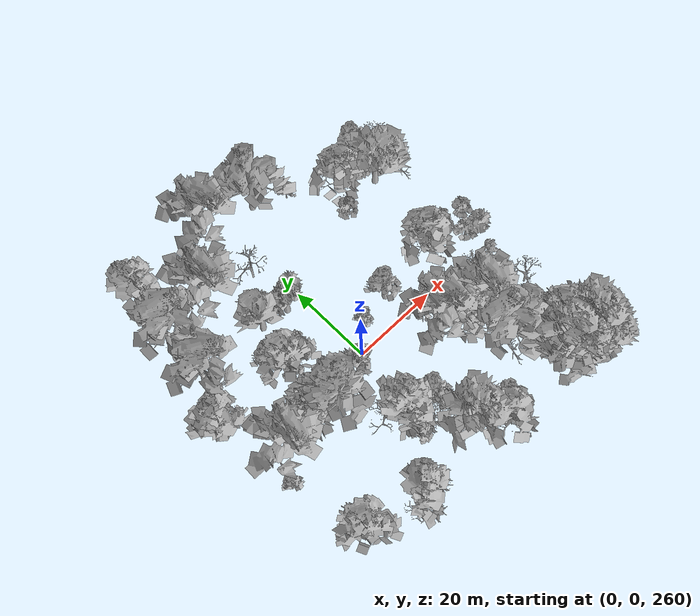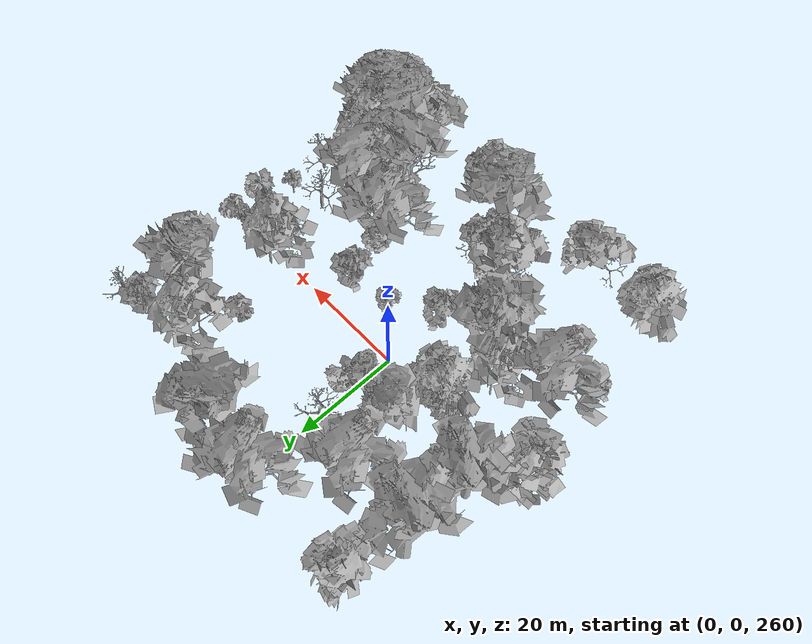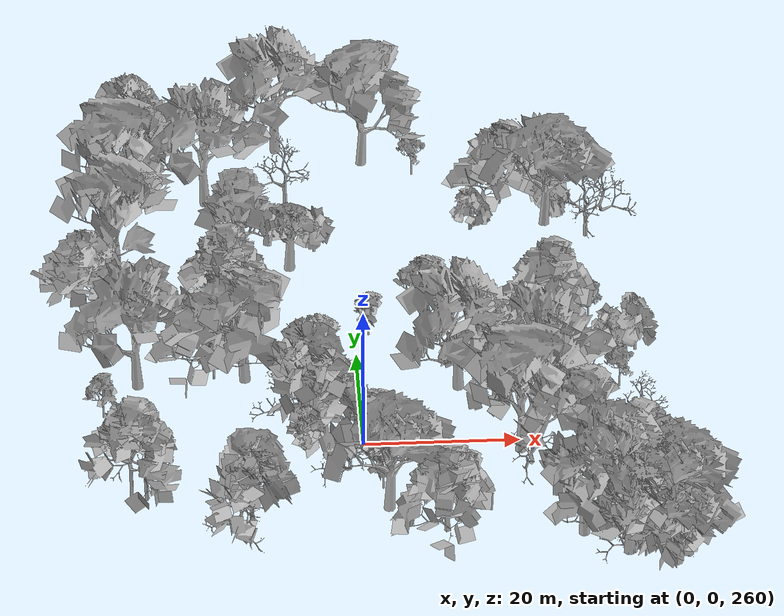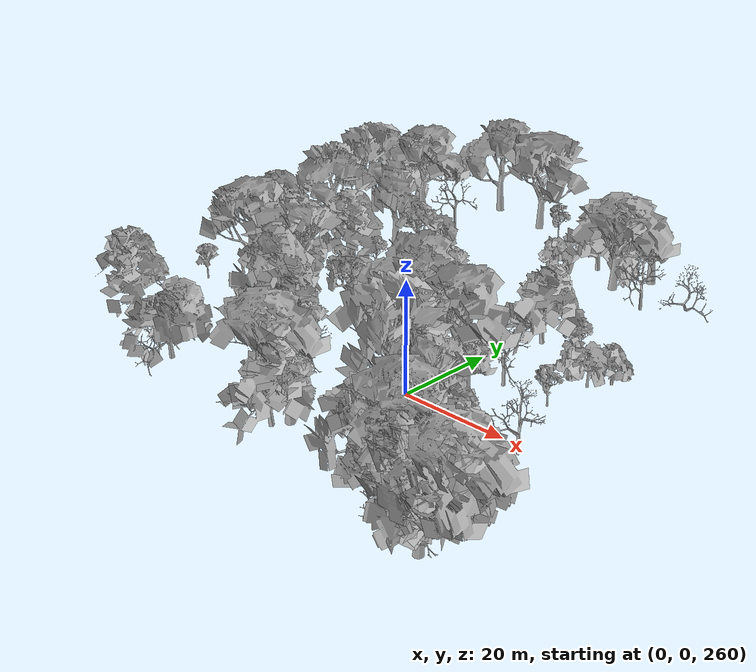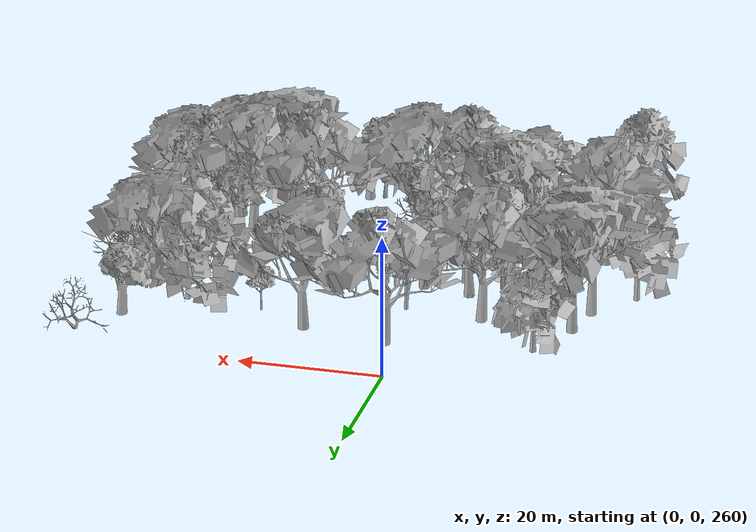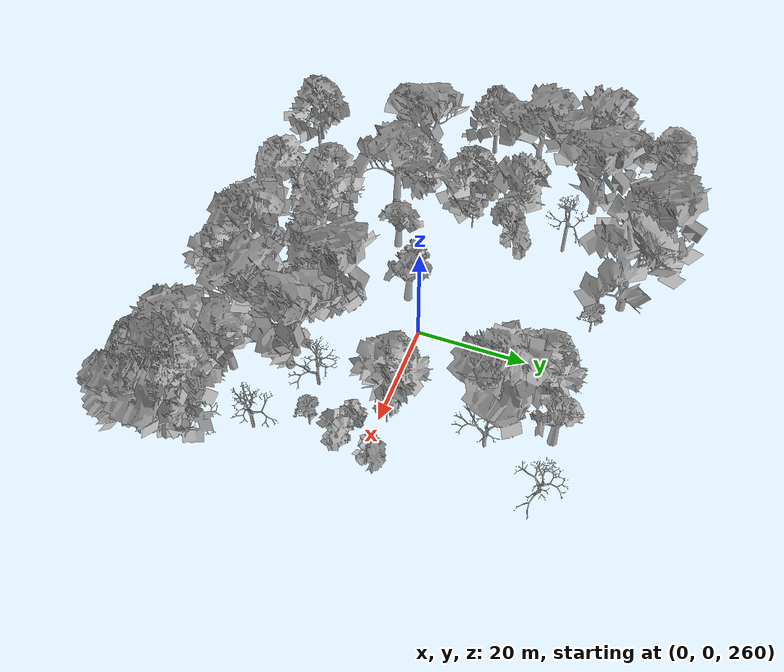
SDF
<sdf version="1.6">
 <world name="default">
  <light name="sun" type="directional">
   <pose>0 0 10 0 -0 0</pose>
   <diffuse>0.8 0.8 0.8 1</diffuse>
   <specular>0.2 0.2 0.2 1</specular>
   <attenuation>
    <range>1000</range>
    <constant>0.9</constant>
    <linear>0.01</linear>
    <quadratic>0.001</quadratic>
   </attenuation>
   <direction>-0.5 0.1 -0.9</direction>
  </light>
  <scene>
   <sky><clouds><speed>12</speed></clouds></sky>
   <ambient>0.4 0.4 0.4 1</ambient>
   <background>0.7 0.7 0.7 1</background>
   <shadows>1</shadows>
  </scene>
  <spherical_coordinates>
   <surface_model>EARTH_WGS84</surface_model>
   <latitude_deg>47.3977</latitude_deg>
   <longitude_deg>8.54559</longitude_deg>
   <elevation>0</elevation>
   <heading_deg>0</heading_deg>
  </spherical_coordinates>
  <physics name="default_physics" default="0" type="ode">
   <ode>
    <solver>
     <type>quick</type>
     <iters>100</iters>
     <sor>1.3</sor>
     <use_dynamic_moi_rescaling>0</use_dynamic_moi_rescaling>
    </solver>
    <constraints>
     <cfm>0</cfm>
     <erp>0.2</erp>
     <contact_max_correcting_vel>100</contact_max_correcting_vel>
     <contact_surface_layer>0.001</contact_surface_layer>
    </constraints>
   </ode>
   <max_step_size>0.002</max_step_size>
   <real_time_factor>1</real_time_factor>
   <real_time_update_rate>500</real_time_update_rate>
  </physics>
  <gravity>0 0 -9.8</gravity>
  <magnetic_field>6e-06 2.3e-05 -4.2e-05</magnetic_field>
  <atmosphere type="adiabatic"/>
  <model name="my_mesh0">
   <pose>31.8092 -32.3227 269.201 0 -0 0.686781</pose>
   <static>1</static>
   <link name="body">
    <visual name="visual">
     <geometry><mesh><uri>model://trees/13.dae</uri><scale>1 1 1</scale></mesh></geometry>
    </visual>
    <collision name="collision">
     <geometry><mesh><uri>model://trees/13.dae</uri><scale>1 1 1</scale></mesh></geometry>
    </collision>
   </link>
  </model>
  <model name="my_mesh1">
   <pose>34.7272 -24.6179 268.006 0 0 -0.632447</pose>
   <static>1</static>
   <link name="body">
    <visual name="visual">
     <geometry><mesh><uri>model://trees/19.dae</uri><scale>1 1 1</scale></mesh></geometry>
    </visual>
    <collision name="collision">
     <geometry><mesh><uri>model://trees/19.dae</uri><scale>1 1 1</scale></mesh></geometry>
    </collision>
   </link>
  </model>
  <model name="my_mesh2">
   <pose>32.0253 -30.8515 269.517 0 -0 0.346723</pose>
   <static>1</static>
   <link name="body">
    <visual name="visual">
     <geometry><mesh><uri>model://trees/7.dae</uri><scale>1 1 1</scale></mesh></geometry>
    </visual>
    <collision name="collision">
     <geometry><mesh><uri>model://trees/7.dae</uri><scale>1 1 1</scale></mesh></geometry>
    </collision>
   </link>
  </model>
  <model name="my_mesh3">
   <pose>30.3491 -32.8773 269.58 0 0 -0.473909</pose>
   <static>1</static>
   <link name="body">
    <visual name="visual">
     <geometry><mesh><uri>model://trees/1.dae</uri><scale>1 1 1</scale></mesh></geometry>
    </visual>
    <collision name="collision">
     <geometry><mesh><uri>model://trees/1.dae</uri><scale>1 1 1</scale></mesh></geometry>
    </collision>
   </link>
  </model>
  <model name="my_mesh4">
   <pose>30.1256 -35.2091 268.508 0 0 -0.863591</pose>
   <static>1</static>
   <link name="body">
    <visual name="visual">
     <geometry><mesh><uri>model://trees/11.dae</uri><scale>1 1 1</scale></mesh></geometry>
    </visual>
    <collision name="collision">
     <geometry><mesh><uri>model://trees/11.dae</uri><scale>1 1 1</scale></mesh></geometry>
    </collision>
   </link>
  </model>
  <model name="my_mesh5">
   <pose>34.7257 -35.412 267.371 0 -0 0.107267</pose>
   <static>1</static>
   <link name="body">
    <visual name="visual">
     <geometry><mesh><uri>model://trees/3.dae</uri><scale>1 1 1</scale></mesh></geometry>
    </visual>
    <collision name="collision">
     <geometry><mesh><uri>model://trees/3.dae</uri><scale>1 1 1</scale></mesh></geometry>
    </collision>
   </link>
  </model>
  <model name="my_mesh6">
   <pose>34.9846 -27.5556 268.133 0 0 -0.910287</pose>
   <static>1</static>
   <link name="body">
    <visual name="visual">
     <geometry><mesh><uri>model://trees/12.dae</uri><scale>1 1 1</scale></mesh></geometry>
    </visual>
    <collision name="collision">
     <geometry><mesh><uri>model://trees/12.dae</uri><scale>1 1 1</scale></mesh></geometry>
    </collision>
   </link>
  </model>
  <model name="my_mesh7">
   <pose>34.6481 -32.1142 267.915 0 0 -1.41705</pose>
   <static>1</static>
   <link name="body">
    <visual name="visual">
     <geometry><mesh><uri>model://trees/19.dae</uri><scale>1 1 1</scale></mesh></geometry>
    </visual>
    <collision name="collision">
     <geometry><mesh><uri>model://trees/19.dae</uri><scale>1 1 1</scale></mesh></geometry>
    </collision>
   </link>
  </model>
  <model name="my_mesh8">
   <pose>35.044 -28.1836 268.127 0 -0 0.463468</pose>
   <static>1</static>
   <link name="body">
    <visual name="visual">
     <geometry><mesh><uri>model://trees/0.dae</uri><scale>1 1 1</scale></mesh></geometry>
    </visual>
    <collision name="collision">
     <geometry><mesh><uri>model://trees/0.dae</uri><scale>1 1 1</scale></mesh></geometry>
    </collision>
   </link>
  </model>
  <model name="my_mesh9">
   <pose>35.2249 -30.7743 267.98 0 0 -1.43985</pose>
   <static>1</static>
   <link name="body">
    <visual name="visual">
     <geometry><mesh><uri>model://trees/6.dae</uri><scale>1 1 1</scale></mesh></geometry>
    </visual>
    <collision name="collision">
     <geometry><mesh><uri>model://trees/6.dae</uri><scale>1 1 1</scale></mesh></geometry>
    </collision>
   </link>
  </model>
  <model name="my_mesh10">
   <pose>32.33 -33.5168 268.46 0 -0 0.749247</pose>
   <static>1</static>
   <link name="body">
    <visual name="visual">
     <geometry><mesh><uri>model://trees/13.dae</uri><scale>1 1 1</scale></mesh></geometry>
    </visual>
    <collision name="collision">
     <geometry><mesh><uri>model://trees/13.dae</uri><scale>1 1 1</scale></mesh></geometry>
    </collision>
   </link>
  </model>
  <model name="my_mesh11">
   <pose>34.3327 -31.6171 267.68 0 -0 0.21674</pose>
   <static>1</static>
   <link name="body">
    <visual name="visual">
     <geometry><mesh><uri>model://trees/15.dae</uri><scale>1 1 1</scale></mesh></geometry>
    </visual>
    <collision name="collision">
     <geometry><mesh><uri>model://trees/15.dae</uri><scale>1 1 1</scale></mesh></geometry>
    </collision>
   </link>
  </model>
  <model name="my_mesh12">
   <pose>25.7476 -22.197 271.613 0 -0 0.57092</pose>
   <static>1</static>
   <link name="body">
    <visual name="visual">
     <geometry><mesh><uri>model://trees/11.dae</uri><scale>1 1 1</scale></mesh></geometry>
    </visual>
    <collision name="collision">
     <geometry><mesh><uri>model://trees/11.dae</uri><scale>1 1 1</scale></mesh></geometry>
    </collision>
   </link>
  </model>
  <model name="my_mesh13">
   <pose>31.4644 -34.9695 268.605 0 -0 0.342283</pose>
   <static>1</static>
   <link name="body">
    <visual name="visual">
     <geometry><mesh><uri>model://trees/3.dae</uri><scale>1 1 1</scale></mesh></geometry>
    </visual>
    <collision name="collision">
     <geometry><mesh><uri>model://trees/3.dae</uri><scale>1 1 1</scale></mesh></geometry>
    </collision>
   </link>
  </model>
  <model name="my_mesh14">
   <pose>32.3999 -28.7467 268.439 0 -0 0.516903</pose>
   <static>1</static>
   <link name="body">
    <visual name="visual">
     <geometry><mesh><uri>model://trees/17.dae</uri><scale>1 1 1</scale></mesh></geometry>
    </visual>
    <collision name="collision">
     <geometry><mesh><uri>model://trees/17.dae</uri><scale>1 1 1</scale></mesh></geometry>
    </collision>
   </link>
  </model>
  <model name="my_mesh15">
   <pose>24.846 -33.4178 270.201 0 -0 0.440327</pose>
   <static>1</static>
   <link name="body">
    <visual name="visual">
     <geometry><mesh><uri>model://trees/8.dae</uri><scale>1 1 1</scale></mesh></geometry>
    </visual>
    <collision name="collision">
     <geometry><mesh><uri>model://trees/8.dae</uri><scale>1 1 1</scale></mesh></geometry>
    </collision>
   </link>
  </model>
  <model name="my_mesh16">
   <pose>30.8607 -35.1136 268.38 0 0 -1.54265</pose>
   <static>1</static>
   <link name="body">
    <visual name="visual">
     <geometry><mesh><uri>model://trees/18.dae</uri><scale>1 1 1</scale></mesh></geometry>
    </visual>
    <collision name="collision">
     <geometry><mesh><uri>model://trees/18.dae</uri><scale>1 1 1</scale></mesh></geometry>
    </collision>
   </link>
  </model>
  <model name="my_mesh17">
   <pose>34.3845 -34.5527 267.435 0 0 -1.02573</pose>
   <static>1</static>
   <link name="body">
    <visual name="visual">
     <geometry><mesh><uri>model://trees/12.dae</uri><scale>1 1 1</scale></mesh></geometry>
    </visual>
    <collision name="collision">
     <geometry><mesh><uri>model://trees/12.dae</uri><scale>1 1 1</scale></mesh></geometry>
    </collision>
   </link>
  </model>
  <model name="my_mesh18">
   <pose>35.5261 -31.3053 267.911 0 0 -1.09133</pose>
   <static>1</static>
   <link name="body">
    <visual name="visual">
     <geometry><mesh><uri>model://trees/9.dae</uri><scale>1 1 1</scale></mesh></geometry>
    </visual>
    <collision name="collision">
     <geometry><mesh><uri>model://trees/9.dae</uri><scale>1 1 1</scale></mesh></geometry>
    </collision>
   </link>
  </model>
  <model name="my_mesh19">
   <pose>34.5955 -31.3232 267.979 0 -0 0.092958</pose>
   <static>1</static>
   <link name="body">
    <visual name="visual">
     <geometry><mesh><uri>model://trees/14.dae</uri><scale>1 1 1</scale></mesh></geometry>
    </visual>
    <collision name="collision">
     <geometry><mesh><uri>model://trees/14.dae</uri><scale>1 1 1</scale></mesh></geometry>
    </collision>
   </link>
  </model>
  <model name="my_mesh20">
   <pose>27.2932 -30.1042 270.733 0 0 -0.576704</pose>
   <static>1</static>
   <link name="body">
    <visual name="visual">
     <geometry><mesh><uri>model://trees/9.dae</uri><scale>1 1 1</scale></mesh></geometry>
    </visual>
    <collision name="collision">
     <geometry><mesh><uri>model://trees/9.dae</uri><scale>1 1 1</scale></mesh></geometry>
    </collision>
   </link>
  </model>
  <model name="my_mesh21">
   <pose>35.9068 -35.5767 267.076 0 0 -1.48626</pose>
   <static>1</static>
   <link name="body">
    <visual name="visual">
     <geometry><mesh><uri>model://trees/8.dae</uri><scale>1 1 1</scale></mesh></geometry>
    </visual>
    <collision name="collision">
     <geometry><mesh><uri>model://trees/8.dae</uri><scale>1 1 1</scale></mesh></geometry>
    </collision>
   </link>
  </model>
  <model name="my_mesh22">
   <pose>32.0585 -35.6565 268.252 0 -0 1.45529</pose>
   <static>1</static>
   <link name="body">
    <visual name="visual">
     <geometry><mesh><uri>model://trees/2.dae</uri><scale>1 1 1</scale></mesh></geometry>
    </visual>
    <collision name="collision">
     <geometry><mesh><uri>model://trees/2.dae</uri><scale>1 1 1</scale></mesh></geometry>
    </collision>
   </link>
  </model>
  <model name="my_mesh23">
   <pose>35.9787 -24.9718 268.479 0 -0 0.571739</pose>
   <static>1</static>
   <link name="body">
    <visual name="visual">
     <geometry><mesh><uri>model://trees/19.dae</uri><scale>1 1 1</scale></mesh></geometry>
    </visual>
    <collision name="collision">
     <geometry><mesh><uri>model://trees/19.dae</uri><scale>1 1 1</scale></mesh></geometry>
    </collision>
   </link>
  </model>
  <model name="my_mesh24">
   <pose>34.767 -24.7098 268.006 0 0 -1.23066</pose>
   <static>1</static>
   <link name="body">
    <visual name="visual">
     <geometry><mesh><uri>model://trees/3.dae</uri><scale>1 1 1</scale></mesh></geometry>
    </visual>
    <collision name="collision">
     <geometry><mesh><uri>model://trees/3.dae</uri><scale>1 1 1</scale></mesh></geometry>
    </collision>
   </link>
  </model>
  <model name="my_mesh25">
   <pose>34.4909 -27.7353 268.133 0 0 -1.35264</pose>
   <static>1</static>
   <link name="body">
    <visual name="visual">
     <geometry><mesh><uri>model://trees/15.dae</uri><scale>1 1 1</scale></mesh></geometry>
    </visual>
    <collision name="collision">
     <geometry><mesh><uri>model://trees/15.dae</uri><scale>1 1 1</scale></mesh></geometry>
    </collision>
   </link>
  </model>
  <model name="my_mesh26">
   <pose>35.0418 -35.2374 267.371 0 0 -0.151467</pose>
   <static>1</static>
   <link name="body">
    <visual name="visual">
     <geometry><mesh><uri>model://trees/1.dae</uri><scale>1 1 1</scale></mesh></geometry>
    </visual>
    <collision name="collision">
     <geometry><mesh><uri>model://trees/1.dae</uri><scale>1 1 1</scale></mesh></geometry>
    </collision>
   </link>
  </model>
  <model name="my_mesh27">
   <pose>35.3366 -31.69 267.842 0 0 -0.927634</pose>
   <static>1</static>
   <link name="body">
    <visual name="visual">
     <geometry><mesh><uri>model://trees/12.dae</uri><scale>1 1 1</scale></mesh></geometry>
    </visual>
    <collision name="collision">
     <geometry><mesh><uri>model://trees/12.dae</uri><scale>1 1 1</scale></mesh></geometry>
    </collision>
   </link>
  </model>
  <model name="my_mesh28">
   <pose>35.5686 -34.2175 267.342 0 -0 1.00279</pose>
   <static>1</static>
   <link name="body">
    <visual name="visual">
     <geometry><mesh><uri>model://trees/5.dae</uri><scale>1 1 1</scale></mesh></geometry>
    </visual>
    <collision name="collision">
     <geometry><mesh><uri>model://trees/5.dae</uri><scale>1 1 1</scale></mesh></geometry>
    </collision>
   </link>
  </model>
  <model name="my_mesh29">
   <pose>33.5961 -14.8801 269.714 0 0 -0.409569</pose>
   <static>1</static>
   <link name="body">
    <visual name="visual">
     <geometry><mesh><uri>model://trees/17.dae</uri><scale>1 1 1</scale></mesh></geometry>
    </visual>
    <collision name="collision">
     <geometry><mesh><uri>model://trees/17.dae</uri><scale>1 1 1</scale></mesh></geometry>
    </collision>
   </link>
  </model>
  <model name="my_mesh30">
   <pose>33.72 -32.8195 267.701 0 -0 1.03609</pose>
   <static>1</static>
   <link name="body">
    <visual name="visual">
     <geometry><mesh><uri>model://trees/18.dae</uri><scale>1 1 1</scale></mesh></geometry>
    </visual>
    <collision name="collision">
     <geometry><mesh><uri>model://trees/18.dae</uri><scale>1 1 1</scale></mesh></geometry>
    </collision>
   </link>
  </model>
  <model name="my_mesh31">
   <pose>31.3042 -34.3624 268.605 0 0 -1.4526</pose>
   <static>1</static>
   <link name="body">
    <visual name="visual">
     <geometry><mesh><uri>model://trees/14.dae</uri><scale>1 1 1</scale></mesh></geometry>
    </visual>
    <collision name="collision">
     <geometry><mesh><uri>model://trees/14.dae</uri><scale>1 1 1</scale></mesh></geometry>
    </collision>
   </link>
  </model>
  <model name="my_mesh32">
   <pose>34.8933 -31.1558 267.979 0 0 -1.19306</pose>
   <static>1</static>
   <link name="body">
    <visual name="visual">
     <geometry><mesh><uri>model://trees/7.dae</uri><scale>1 1 1</scale></mesh></geometry>
    </visual>
    <collision name="collision">
     <geometry><mesh><uri>model://trees/7.dae</uri><scale>1 1 1</scale></mesh></geometry>
    </collision>
   </link>
  </model>
  <model name="my_mesh33">
   <pose>11.2359 -10.0552 275.507 0 0 -0.94498</pose>
   <static>1</static>
   <link name="body">
    <visual name="visual">
     <geometry><mesh><uri>model://trees/10.dae</uri><scale>1 1 1</scale></mesh></geometry>
    </visual>
    <collision name="collision">
     <geometry><mesh><uri>model://trees/10.dae</uri><scale>1 1 1</scale></mesh></geometry>
    </collision>
   </link>
  </model>
  <model name="my_mesh34">
   <pose>1.14712 -26.4236 272.618 0 -0 0.091258</pose>
   <static>1</static>
   <link name="body">
    <visual name="visual">
     <geometry><mesh><uri>model://trees/6.dae</uri><scale>1 1 1</scale></mesh></geometry>
    </visual>
    <collision name="collision">
     <geometry><mesh><uri>model://trees/6.dae</uri><scale>1 1 1</scale></mesh></geometry>
    </collision>
   </link>
  </model>
  <model name="my_mesh35">
   <pose>30.5573 -33.3651 269.367 0 0 -1.51438</pose>
   <static>1</static>
   <link name="body">
    <visual name="visual">
     <geometry><mesh><uri>model://trees/5.dae</uri><scale>1 1 1</scale></mesh></geometry>
    </visual>
    <collision name="collision">
     <geometry><mesh><uri>model://trees/5.dae</uri><scale>1 1 1</scale></mesh></geometry>
    </collision>
   </link>
  </model>
  <model name="my_mesh36">
   <pose>14.6467 18.7486 279.992 0 0 -0.027595</pose>
   <static>1</static>
   <link name="body">
    <visual name="visual">
     <geometry><mesh><uri>model://trees/4.dae</uri><scale>1 1 1</scale></mesh></geometry>
    </visual>
    <collision name="collision">
     <geometry><mesh><uri>model://trees/4.dae</uri><scale>1 1 1</scale></mesh></geometry>
    </collision>
   </link>
  </model>
  <model name="my_mesh37">
   <pose>7.71589 0.731895 277.949 0 -0 0.870139</pose>
   <static>1</static>
   <link name="body">
    <visual name="visual">
     <geometry><mesh><uri>model://trees/7.dae</uri><scale>1 1 1</scale></mesh></geometry>
    </visual>
    <collision name="collision">
     <geometry><mesh><uri>model://trees/7.dae</uri><scale>1 1 1</scale></mesh></geometry>
    </collision>
   </link>
  </model>
  <model name="my_mesh38">
   <pose>-29.0543 -30.817 274.803 0 -0 0.848138</pose>
   <static>1</static>
   <link name="body">
    <visual name="visual">
     <geometry><mesh><uri>model://trees/15.dae</uri><scale>1 1 1</scale></mesh></geometry>
    </visual>
    <collision name="collision">
     <geometry><mesh><uri>model://trees/15.dae</uri><scale>1 1 1</scale></mesh></geometry>
    </collision>
   </link>
  </model>
  <model name="my_mesh39">
   <pose>32.5707 28.7386 275.894 0 -0 1.49578</pose>
   <static>1</static>
   <link name="body">
    <visual name="visual">
     <geometry><mesh><uri>model://trees/19.dae</uri><scale>1 1 1</scale></mesh></geometry>
    </visual>
    <collision name="collision">
     <geometry><mesh><uri>model://trees/19.dae</uri><scale>1 1 1</scale></mesh></geometry>
    </collision>
   </link>
  </model>
  <model name="my_mesh40">
   <pose>31.1868 -26.4624 269.536 0 -0 0.465976</pose>
   <static>1</static>
   <link name="body">
    <visual name="visual">
     <geometry><mesh><uri>model://trees/15.dae</uri><scale>1 1 1</scale></mesh></geometry>
    </visual>
    <collision name="collision">
     <geometry><mesh><uri>model://trees/15.dae</uri><scale>1 1 1</scale></mesh></geometry>
    </collision>
   </link>
  </model>
  <model name="my_mesh41">
   <pose>22.193 2.75276 276.22 0 0 -1.13295</pose>
   <static>1</static>
   <link name="body">
    <visual name="visual">
     <geometry><mesh><uri>model://trees/2.dae</uri><scale>1 1 1</scale></mesh></geometry>
    </visual>
    <collision name="collision">
     <geometry><mesh><uri>model://trees/2.dae</uri><scale>1 1 1</scale></mesh></geometry>
    </collision>
   </link>
  </model>
  <model name="my_mesh42">
   <pose>19.3778 -23.4332 273.638 0 0 -0.242876</pose>
   <static>1</static>
   <link name="body">
    <visual name="visual">
     <geometry><mesh><uri>model://trees/18.dae</uri><scale>1 1 1</scale></mesh></geometry>
    </visual>
    <collision name="collision">
     <geometry><mesh><uri>model://trees/18.dae</uri><scale>1 1 1</scale></mesh></geometry>
    </collision>
   </link>
  </model>
  <model name="my_mesh43">
   <pose>-6.36013 -6.2305 274.478 0 -0 0.200808</pose>
   <static>1</static>
   <link name="body">
    <visual name="visual">
     <geometry><mesh><uri>model://trees/7.dae</uri><scale>1 1 1</scale></mesh></geometry>
    </visual>
    <collision name="collision">
     <geometry><mesh><uri>model://trees/7.dae</uri><scale>1 1 1</scale></mesh></geometry>
    </collision>
   </link>
  </model>
  <model name="my_mesh44">
   <pose>-5.46391 -20.336 275.715 0 0 -0.464835</pose>
   <static>1</static>
   <link name="body">
    <visual name="visual">
     <geometry><mesh><uri>model://trees/13.dae</uri><scale>1 1 1</scale></mesh></geometry>
    </visual>
    <collision name="collision">
     <geometry><mesh><uri>model://trees/13.dae</uri><scale>1 1 1</scale></mesh></geometry>
    </collision>
   </link>
  </model>
  <model name="my_mesh45">
   <pose>11.3072 -7.30523 275.976 0 -0 0.5318</pose>
   <static>1</static>
   <link name="body">
    <visual name="visual">
     <geometry><mesh><uri>model://trees/1.dae</uri><scale>1 1 1</scale></mesh></geometry>
    </visual>
    <collision name="collision">
     <geometry><mesh><uri>model://trees/1.dae</uri><scale>1 1 1</scale></mesh></geometry>
    </collision>
   </link>
  </model>
  <model name="my_mesh46">
   <pose>28.7109 5.03347 274.654 0 0 -1.10152</pose>
   <static>1</static>
   <link name="body">
    <visual name="visual">
     <geometry><mesh><uri>model://trees/3.dae</uri><scale>1 1 1</scale></mesh></geometry>
    </visual>
    <collision name="collision">
     <geometry><mesh><uri>model://trees/3.dae</uri><scale>1 1 1</scale></mesh></geometry>
    </collision>
   </link>
  </model>
  <model name="my_mesh47">
   <pose>-15.0353 -9.72521 277.306 0 -0 0.85644</pose>
   <static>1</static>
   <link name="body">
    <visual name="visual">
     <geometry><mesh><uri>model://trees/9.dae</uri><scale>1 1 1</scale></mesh></geometry>
    </visual>
    <collision name="collision">
     <geometry><mesh><uri>model://trees/9.dae</uri><scale>1 1 1</scale></mesh></geometry>
    </collision>
   </link>
  </model>
  <model name="my_mesh48">
   <pose>29.6293 19.9135 277.737 0 -0 0.024887</pose>
   <static>1</static>
   <link name="body">
    <visual name="visual">
     <geometry><mesh><uri>model://trees/17.dae</uri><scale>1 1 1</scale></mesh></geometry>
    </visual>
    <collision name="collision">
     <geometry><mesh><uri>model://trees/17.dae</uri><scale>1 1 1</scale></mesh></geometry>
    </collision>
   </link>
  </model>
  <model name="my_mesh49">
   <pose>25.2792 -7.43395 273.535 0 -0 0.927396</pose>
   <static>1</static>
   <link name="body">
    <visual name="visual">
     <geometry><mesh><uri>model://trees/17.dae</uri><scale>1 1 1</scale></mesh></geometry>
    </visual>
    <collision name="collision">
     <geometry><mesh><uri>model://trees/17.dae</uri><scale>1 1 1</scale></mesh></geometry>
    </collision>
   </link>
  </model>
  <model name="my_mesh50">
   <pose>1.2915 33.0939 281.385 0 -0 0.960889</pose>
   <static>1</static>
   <link name="body">
    <visual name="visual">
     <geometry><mesh><uri>model://trees/10.dae</uri><scale>1 1 1</scale></mesh></geometry>
    </visual>
    <collision name="collision">
     <geometry><mesh><uri>model://trees/10.dae</uri><scale>1 1 1</scale></mesh></geometry>
    </collision>
   </link>
  </model>
  <model name="my_mesh51">
   <pose>-8.78192 12.0859 279.104 0 0 -0.674098</pose>
   <static>1</static>
   <link name="body">
    <visual name="visual">
     <geometry><mesh><uri>model://trees/7.dae</uri><scale>1 1 1</scale></mesh></geometry>
    </visual>
    <collision name="collision">
     <geometry><mesh><uri>model://trees/7.dae</uri><scale>1 1 1</scale></mesh></geometry>
    </collision>
   </link>
  </model>
  <model name="my_mesh52">
   <pose>8.40203 -33.7549 271.487 0 -0 1.26365</pose>
   <static>1</static>
   <link name="body">
    <visual name="visual">
     <geometry><mesh><uri>model://trees/12.dae</uri><scale>1 1 1</scale></mesh></geometry>
    </visual>
    <collision name="collision">
     <geometry><mesh><uri>model://trees/12.dae</uri><scale>1 1 1</scale></mesh></geometry>
    </collision>
   </link>
  </model>
  <model name="my_mesh53">
   <pose>25.184 22.1094 279.541 0 0 -1.45385</pose>
   <static>1</static>
   <link name="body">
    <visual name="visual">
     <geometry><mesh><uri>model://trees/5.dae</uri><scale>1 1 1</scale></mesh></geometry>
    </visual>
    <collision name="collision">
     <geometry><mesh><uri>model://trees/5.dae</uri><scale>1 1 1</scale></mesh></geometry>
    </collision>
   </link>
  </model>
  <model name="my_mesh54">
   <pose>34.1154 -0.736556 274.015 0 0 -0.315024</pose>
   <static>1</static>
   <link name="body">
    <visual name="visual">
     <geometry><mesh><uri>model://trees/5.dae</uri><scale>1 1 1</scale></mesh></geometry>
    </visual>
    <collision name="collision">
     <geometry><mesh><uri>model://trees/5.dae</uri><scale>1 1 1</scale></mesh></geometry>
    </collision>
   </link>
  </model>
  <model name="my_mesh55">
   <pose>15.4491 -13.2779 274.884 0 0 -0.177464</pose>
   <static>1</static>
   <link name="body">
    <visual name="visual">
     <geometry><mesh><uri>model://trees/15.dae</uri><scale>1 1 1</scale></mesh></geometry>
    </visual>
    <collision name="collision">
     <geometry><mesh><uri>model://trees/15.dae</uri><scale>1 1 1</scale></mesh></geometry>
    </collision>
   </link>
  </model>
  <model name="my_mesh56">
   <pose>-12.2111 5.43955 277.287 0 0 -1.04038</pose>
   <static>1</static>
   <link name="body">
    <visual name="visual">
     <geometry><mesh><uri>model://trees/3.dae</uri><scale>1 1 1</scale></mesh></geometry>
    </visual>
    <collision name="collision">
     <geometry><mesh><uri>model://trees/3.dae</uri><scale>1 1 1</scale></mesh></geometry>
    </collision>
   </link>
  </model>
  <model name="my_mesh57">
   <pose>34.8351 -25.7034 268.006 0 0 -1.09244</pose>
   <static>1</static>
   <link name="body">
    <visual name="visual">
     <geometry><mesh><uri>model://trees/3.dae</uri><scale>1 1 1</scale></mesh></geometry>
    </visual>
    <collision name="collision">
     <geometry><mesh><uri>model://trees/3.dae</uri><scale>1 1 1</scale></mesh></geometry>
    </collision>
   </link>
  </model>
  <model name="my_mesh58">
   <pose>34.5629 4.81951 272.469 0 -0 0.41533</pose>
   <static>1</static>
   <link name="body">
    <visual name="visual">
     <geometry><mesh><uri>model://trees/4.dae</uri><scale>1 1 1</scale></mesh></geometry>
    </visual>
    <collision name="collision">
     <geometry><mesh><uri>model://trees/4.dae</uri><scale>1 1 1</scale></mesh></geometry>
    </collision>
   </link>
  </model>
  <model name="my_mesh59">
   <pose>26.3495 28.653 278.649 0 -0 1.3164</pose>
   <static>1</static>
   <link name="body">
    <visual name="visual">
     <geometry><mesh><uri>model://trees/7.dae</uri><scale>1 1 1</scale></mesh></geometry>
    </visual>
    <collision name="collision">
     <geometry><mesh><uri>model://trees/7.dae</uri><scale>1 1 1</scale></mesh></geometry>
    </collision>
   </link>
  </model>
  <model name="my_mesh60">
   <pose>30.8813 -25.2356 269.394 0 -0 0.349523</pose>
   <static>1</static>
   <link name="body">
    <visual name="visual">
     <geometry><mesh><uri>model://trees/17.dae</uri><scale>1 1 1</scale></mesh></geometry>
    </visual>
    <collision name="collision">
     <geometry><mesh><uri>model://trees/17.dae</uri><scale>1 1 1</scale></mesh></geometry>
    </collision>
   </link>
  </model>
  <model name="my_mesh61">
   <pose>30.9078 0.20743 273.55 0 0 -1.19239</pose>
   <static>1</static>
   <link name="body">
    <visual name="visual">
     <geometry><mesh><uri>model://trees/4.dae</uri><scale>1 1 1</scale></mesh></geometry>
    </visual>
    <collision name="collision">
     <geometry><mesh><uri>model://trees/4.dae</uri><scale>1 1 1</scale></mesh></geometry>
    </collision>
   </link>
  </model>
  <model name="my_mesh62">
   <pose>21.4116 -13.0165 274.07 0 0 -1.47272</pose>
   <static>1</static>
   <link name="body">
    <visual name="visual">
     <geometry><mesh><uri>model://trees/10.dae</uri><scale>1 1 1</scale></mesh></geometry>
    </visual>
    <collision name="collision">
     <geometry><mesh><uri>model://trees/10.dae</uri><scale>1 1 1</scale></mesh></geometry>
    </collision>
   </link>
  </model>
  <model name="my_mesh63">
   <pose>31.6262 -6.16858 272.328 0 -0 0.72537</pose>
   <static>1</static>
   <link name="body">
    <visual name="visual">
     <geometry><mesh><uri>model://trees/3.dae</uri><scale>1 1 1</scale></mesh></geometry>
    </visual>
    <collision name="collision">
     <geometry><mesh><uri>model://trees/3.dae</uri><scale>1 1 1</scale></mesh></geometry>
    </collision>
   </link>
  </model>
  <model name="my_mesh64">
   <pose>23.5112 3.6149 275.599 0 -0 1.06144</pose>
   <static>1</static>
   <link name="body">
    <visual name="visual">
     <geometry><mesh><uri>model://trees/12.dae</uri><scale>1 1 1</scale></mesh></geometry>
    </visual>
    <collision name="collision">
     <geometry><mesh><uri>model://trees/12.dae</uri><scale>1 1 1</scale></mesh></geometry>
    </collision>
   </link>
  </model>
  <model name="my_mesh65">
   <pose>23.3636 -13.1768 273.154 0 0 -1.49789</pose>
   <static>1</static>
   <link name="body">
    <visual name="visual">
     <geometry><mesh><uri>model://trees/7.dae</uri><scale>1 1 1</scale></mesh></geometry>
    </visual>
    <collision name="collision">
     <geometry><mesh><uri>model://trees/7.dae</uri><scale>1 1 1</scale></mesh></geometry>
    </collision>
   </link>
  </model>
  <model name="my_mesh66">
   <pose>-27.9065 34.1233 282.063 0 -0 0.052054</pose>
   <static>1</static>
   <link name="body">
    <visual name="visual">
     <geometry><mesh><uri>model://trees/13.dae</uri><scale>1 1 1</scale></mesh></geometry>
    </visual>
    <collision name="collision">
     <geometry><mesh><uri>model://trees/13.dae</uri><scale>1 1 1</scale></mesh></geometry>
    </collision>
   </link>
  </model>
  <model name="my_mesh67">
   <pose>-8.0953 -24.7197 277.59 0 0 -0.755647</pose>
   <static>1</static>
   <link name="body">
    <visual name="visual">
     <geometry><mesh><uri>model://trees/1.dae</uri><scale>1 1 1</scale></mesh></geometry>
    </visual>
    <collision name="collision">
     <geometry><mesh><uri>model://trees/1.dae</uri><scale>1 1 1</scale></mesh></geometry>
    </collision>
   </link>
  </model>
  <model name="my_mesh68">
   <pose>-34.6725 3.21718 276.445 0 -0 0.363227</pose>
   <static>1</static>
   <link name="body">
    <visual name="visual">
     <geometry><mesh><uri>model://trees/14.dae</uri><scale>1 1 1</scale></mesh></geometry>
    </visual>
    <collision name="collision">
     <geometry><mesh><uri>model://trees/14.dae</uri><scale>1 1 1</scale></mesh></geometry>
    </collision>
   </link>
  </model>
  <model name="my_mesh69">
   <pose>18.7536 24.9789 279.949 0 -0 0.614646</pose>
   <static>1</static>
   <link name="body">
    <visual name="visual">
     <geometry><mesh><uri>model://trees/12.dae</uri><scale>1 1 1</scale></mesh></geometry>
    </visual>
    <collision name="collision">
     <geometry><mesh><uri>model://trees/12.dae</uri><scale>1 1 1</scale></mesh></geometry>
    </collision>
   </link>
  </model>
  <model name="my_mesh70">
   <pose>24.2946 20.4938 279.439 0 0 -1.32796</pose>
   <static>1</static>
   <link name="body">
    <visual name="visual">
     <geometry><mesh><uri>model://trees/9.dae</uri><scale>1 1 1</scale></mesh></geometry>
    </visual>
    <collision name="collision">
     <geometry><mesh><uri>model://trees/9.dae</uri><scale>1 1 1</scale></mesh></geometry>
    </collision>
   </link>
  </model>
  <model name="my_mesh71">
   <pose>-14.8216 -33.4135 273.264 0 0 -0.844642</pose>
   <static>1</static>
   <link name="body">
    <visual name="visual">
     <geometry><mesh><uri>model://trees/13.dae</uri><scale>1 1 1</scale></mesh></geometry>
    </visual>
    <collision name="collision">
     <geometry><mesh><uri>model://trees/13.dae</uri><scale>1 1 1</scale></mesh></geometry>
    </collision>
   </link>
  </model>
  <model name="my_mesh72">
   <pose>-19.8271 -6.66005 276.38 0 -0 0.754325</pose>
   <static>1</static>
   <link name="body">
    <visual name="visual">
     <geometry><mesh><uri>model://trees/12.dae</uri><scale>1 1 1</scale></mesh></geometry>
    </visual>
    <collision name="collision">
     <geometry><mesh><uri>model://trees/12.dae</uri><scale>1 1 1</scale></mesh></geometry>
    </collision>
   </link>
  </model>
  <model name="my_mesh73">
   <pose>18.0816 -21.4807 274.044 0 -0 0.178969</pose>
   <static>1</static>
   <link name="body">
    <visual name="visual">
     <geometry><mesh><uri>model://trees/10.dae</uri><scale>1 1 1</scale></mesh></geometry>
    </visual>
    <collision name="collision">
     <geometry><mesh><uri>model://trees/10.dae</uri><scale>1 1 1</scale></mesh></geometry>
    </collision>
   </link>
  </model>
  <model name="my_mesh74">
   <pose>7.71011 29.6636 281.685 0 -0 0.409158</pose>
   <static>1</static>
   <link name="body">
    <visual name="visual">
     <geometry><mesh><uri>model://trees/3.dae</uri><scale>1 1 1</scale></mesh></geometry>
    </visual>
    <collision name="collision">
     <geometry><mesh><uri>model://trees/3.dae</uri><scale>1 1 1</scale></mesh></geometry>
    </collision>
   </link>
  </model>
  <model name="my_mesh75">
   <pose>-30.6684 12.591 278.067 0 0 -0.326762</pose>
   <static>1</static>
   <link name="body">
    <visual name="visual">
     <geometry><mesh><uri>model://trees/10.dae</uri><scale>1 1 1</scale></mesh></geometry>
    </visual>
    <collision name="collision">
     <geometry><mesh><uri>model://trees/10.dae</uri><scale>1 1 1</scale></mesh></geometry>
    </collision>
   </link>
  </model>
  <model name="my_mesh76">
   <pose>-16.5751 -34.4749 272.976 0 -0 0.73702</pose>
   <static>1</static>
   <link name="body">
    <visual name="visual">
     <geometry><mesh><uri>model://trees/19.dae</uri><scale>1 1 1</scale></mesh></geometry>
    </visual>
    <collision name="collision">
     <geometry><mesh><uri>model://trees/19.dae</uri><scale>1 1 1</scale></mesh></geometry>
    </collision>
   </link>
  </model>
  <model name="my_mesh77">
   <pose>-19.2271 24.6538 281.077 0 0 -1.2938</pose>
   <static>1</static>
   <link name="body">
    <visual name="visual">
     <geometry><mesh><uri>model://trees/10.dae</uri><scale>1 1 1</scale></mesh></geometry>
    </visual>
    <collision name="collision">
     <geometry><mesh><uri>model://trees/10.dae</uri><scale>1 1 1</scale></mesh></geometry>
    </collision>
   </link>
  </model>
  <model name="my_mesh78">
   <pose>-17.1059 3.74791 276.243 0 -0 1.2288</pose>
   <static>1</static>
   <link name="body">
    <visual name="visual">
     <geometry><mesh><uri>model://trees/15.dae</uri><scale>1 1 1</scale></mesh></geometry>
    </visual>
    <collision name="collision">
     <geometry><mesh><uri>model://trees/15.dae</uri><scale>1 1 1</scale></mesh></geometry>
    </collision>
   </link>
  </model>
  <model name="my_mesh79">
   <pose>-30.3787 23.0309 280.183 0 -0 0.073906</pose>
   <static>1</static>
   <link name="body">
    <visual name="visual">
     <geometry><mesh><uri>model://trees/10.dae</uri><scale>1 1 1</scale></mesh></geometry>
    </visual>
    <collision name="collision">
     <geometry><mesh><uri>model://trees/10.dae</uri><scale>1 1 1</scale></mesh></geometry>
    </collision>
   </link>
  </model>
  <model name="my_mesh80">
   <pose>-2.73168 -23.4068 273.44 0 0 -0.842573</pose>
   <static>1</static>
   <link name="body">
    <visual name="visual">
     <geometry><mesh><uri>model://trees/19.dae</uri><scale>1 1 1</scale></mesh></geometry>
    </visual>
    <collision name="collision">
     <geometry><mesh><uri>model://trees/19.dae</uri><scale>1 1 1</scale></mesh></geometry>
    </collision>
   </link>
  </model>
  <model name="my_mesh81">
   <pose>1.69992 -29.8687 272.1 0 0 -0.953259</pose>
   <static>1</static>
   <link name="body">
    <visual name="visual">
     <geometry><mesh><uri>model://trees/9.dae</uri><scale>1 1 1</scale></mesh></geometry>
    </visual>
    <collision name="collision">
     <geometry><mesh><uri>model://trees/9.dae</uri><scale>1 1 1</scale></mesh></geometry>
    </collision>
   </link>
  </model>
  <model name="my_mesh82">
   <pose>-9.81397 35.9328 281.823 0 0 -0.975654</pose>
   <static>1</static>
   <link name="body">
    <visual name="visual">
     <geometry><mesh><uri>model://trees/10.dae</uri><scale>1 1 1</scale></mesh></geometry>
    </visual>
    <collision name="collision">
     <geometry><mesh><uri>model://trees/10.dae</uri><scale>1 1 1</scale></mesh></geometry>
    </collision>
   </link>
  </model>
  <model name="my_mesh83">
   <pose>-5.58417 14.5433 280.053 0 -0 0.273557</pose>
   <static>1</static>
   <link name="body">
    <visual name="visual">
     <geometry><mesh><uri>model://trees/5.dae</uri><scale>1 1 1</scale></mesh></geometry>
    </visual>
    <collision name="collision">
     <geometry><mesh><uri>model://trees/5.dae</uri><scale>1 1 1</scale></mesh></geometry>
    </collision>
   </link>
  </model>
  <model name="my_mesh84">
   <pose>0.620233 -0.601842 277.321 0 -0 0.581314</pose>
   <static>1</static>
   <link name="body">
    <visual name="visual">
     <geometry><mesh><uri>model://trees/6.dae</uri><scale>1 1 1</scale></mesh></geometry>
    </visual>
    <collision name="collision">
     <geometry><mesh><uri>model://trees/6.dae</uri><scale>1 1 1</scale></mesh></geometry>
    </collision>
   </link>
  </model>
  <model name="my_mesh85">
   <pose>-27.2209 -30.6477 275.096 0 0 -1.27396</pose>
   <static>1</static>
   <link name="body">
    <visual name="visual">
     <geometry><mesh><uri>model://trees/16.dae</uri><scale>1 1 1</scale></mesh></geometry>
    </visual>
    <collision name="collision">
     <geometry><mesh><uri>model://trees/16.dae</uri><scale>1 1 1</scale></mesh></geometry>
    </collision>
   </link>
  </model>
  <model name="my_mesh86">
   <pose>0.724512 -22.8432 272.805 0 -0 0.240915</pose>
   <static>1</static>
   <link name="body">
    <visual name="visual">
     <geometry><mesh><uri>model://trees/6.dae</uri><scale>1 1 1</scale></mesh></geometry>
    </visual>
    <collision name="collision">
     <geometry><mesh><uri>model://trees/6.dae</uri><scale>1 1 1</scale></mesh></geometry>
    </collision>
   </link>
  </model>
  <model name="my_mesh87">
   <pose>-32.3645 -14.7205 275.959 0 -0 1.21901</pose>
   <static>1</static>
   <link name="body">
    <visual name="visual">
     <geometry><mesh><uri>model://trees/6.dae</uri><scale>1 1 1</scale></mesh></geometry>
    </visual>
    <collision name="collision">
     <geometry><mesh><uri>model://trees/6.dae</uri><scale>1 1 1</scale></mesh></geometry>
    </collision>
   </link>
  </model>
  <model name="my_mesh88">
   <pose>-18.823 -8.11206 276.591 0 -0 0.449819</pose>
   <static>1</static>
   <link name="body">
    <visual name="visual">
     <geometry><mesh><uri>model://trees/2.dae</uri><scale>1 1 1</scale></mesh></geometry>
    </visual>
    <collision name="collision">
     <geometry><mesh><uri>model://trees/2.dae</uri><scale>1 1 1</scale></mesh></geometry>
    </collision>
   </link>
  </model>
  <model name="my_mesh89">
   <pose>-7.51088 -19.5538 277.499 0 0 -1.01305</pose>
   <static>1</static>
   <link name="body">
    <visual name="visual">
     <geometry><mesh><uri>model://trees/14.dae</uri><scale>1 1 1</scale></mesh></geometry>
    </visual>
    <collision name="collision">
     <geometry><mesh><uri>model://trees/14.dae</uri><scale>1 1 1</scale></mesh></geometry>
    </collision>
   </link>
  </model>
  <model name="my_mesh90">
   <pose>-28.2104 -8.53719 275.947 0 0 -1.47096</pose>
   <static>1</static>
   <link name="body">
    <visual name="visual">
     <geometry><mesh><uri>model://trees/10.dae</uri><scale>1 1 1</scale></mesh></geometry>
    </visual>
    <collision name="collision">
     <geometry><mesh><uri>model://trees/10.dae</uri><scale>1 1 1</scale></mesh></geometry>
    </collision>
   </link>
  </model>
  <model name="my_mesh91">
   <pose>-10.5257 -17.4695 277.597 0 -0 1.35758</pose>
   <static>1</static>
   <link name="body">
    <visual name="visual">
     <geometry><mesh><uri>model://trees/18.dae</uri><scale>1 1 1</scale></mesh></geometry>
    </visual>
    <collision name="collision">
     <geometry><mesh><uri>model://trees/18.dae</uri><scale>1 1 1</scale></mesh></geometry>
    </collision>
   </link>
  </model>
  <model name="my_mesh92">
   <pose>0.09888 -19.9628 273.606 0 -0 1.06675</pose>
   <static>1</static>
   <link name="body">
    <visual name="visual">
     <geometry><mesh><uri>model://trees/18.dae</uri><scale>1 1 1</scale></mesh></geometry>
    </visual>
    <collision name="collision">
     <geometry><mesh><uri>model://trees/18.dae</uri><scale>1 1 1</scale></mesh></geometry>
    </collision>
   </link>
  </model>
  <model name="my_mesh93">
   <pose>-8.92047 21.8949 280.307 0 0 -1.30852</pose>
   <static>1</static>
   <link name="body">
    <visual name="visual">
     <geometry><mesh><uri>model://trees/16.dae</uri><scale>1 1 1</scale></mesh></geometry>
    </visual>
    <collision name="collision">
     <geometry><mesh><uri>model://trees/16.dae</uri><scale>1 1 1</scale></mesh></geometry>
    </collision>
   </link>
  </model>
  <model name="my_mesh94">
   <pose>-14.8529 12.7293 278.842 0 -0 1.5016</pose>
   <static>1</static>
   <link name="body">
    <visual name="visual">
     <geometry><mesh><uri>model://trees/11.dae</uri><scale>1 1 1</scale></mesh></geometry>
    </visual>
    <collision name="collision">
     <geometry><mesh><uri>model://trees/11.dae</uri><scale>1 1 1</scale></mesh></geometry>
    </collision>
   </link>
  </model>
  <model name="my_mesh95">
   <pose>10.1126 -32.0349 271.862 0 -0 0.912065</pose>
   <static>1</static>
   <link name="body">
    <visual name="visual">
     <geometry><mesh><uri>model://trees/7.dae</uri><scale>1 1 1</scale></mesh></geometry>
    </visual>
    <collision name="collision">
     <geometry><mesh><uri>model://trees/7.dae</uri><scale>1 1 1</scale></mesh></geometry>
    </collision>
   </link>
  </model>
  <model name="my_mesh96">
   <pose>-16.9295 1.5909 275.44 0 0 -0.832253</pose>
   <static>1</static>
   <link name="body">
    <visual name="visual">
     <geometry><mesh><uri>model://trees/1.dae</uri><scale>1 1 1</scale></mesh></geometry>
    </visual>
    <collision name="collision">
     <geometry><mesh><uri>model://trees/1.dae</uri><scale>1 1 1</scale></mesh></geometry>
    </collision>
   </link>
  </model>
  <model name="my_mesh97">
   <pose>-18.5935 5.81218 277.24 0 -0 1.01406</pose>
   <static>1</static>
   <link name="body">
    <visual name="visual">
     <geometry><mesh><uri>model://trees/7.dae</uri><scale>1 1 1</scale></mesh></geometry>
    </visual>
    <collision name="collision">
     <geometry><mesh><uri>model://trees/7.dae</uri><scale>1 1 1</scale></mesh></geometry>
    </collision>
   </link>
  </model>
  <model name="my_mesh98">
   <pose>0.291887 -20.8601 273.086 0 -0 1.06094</pose>
   <static>1</static>
   <link name="body">
    <visual name="visual">
     <geometry><mesh><uri>model://trees/7.dae</uri><scale>1 1 1</scale></mesh></geometry>
    </visual>
    <collision name="collision">
     <geometry><mesh><uri>model://trees/7.dae</uri><scale>1 1 1</scale></mesh></geometry>
    </collision>
   </link>
  </model>
 </world>
</sdf>
